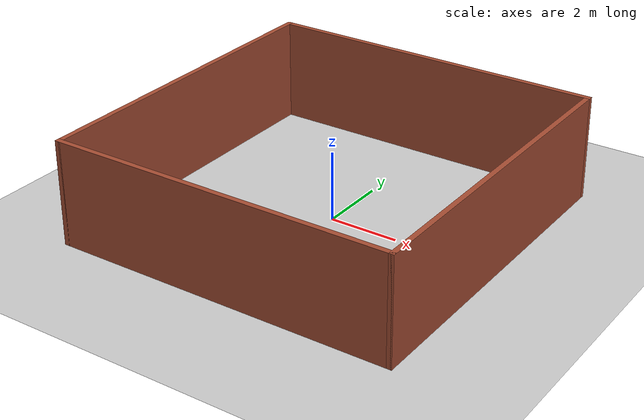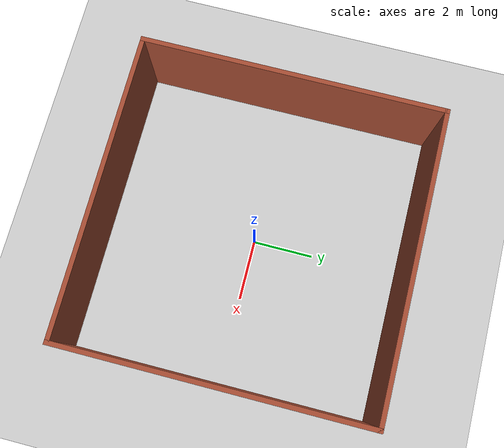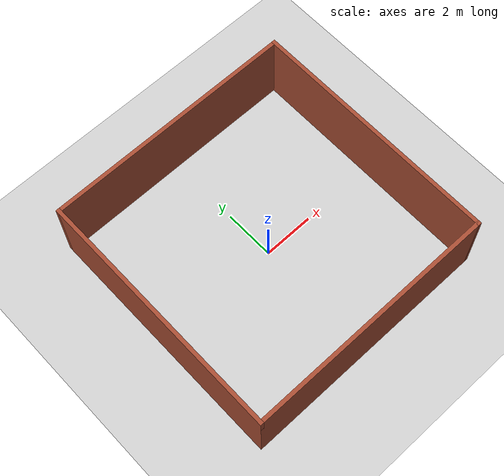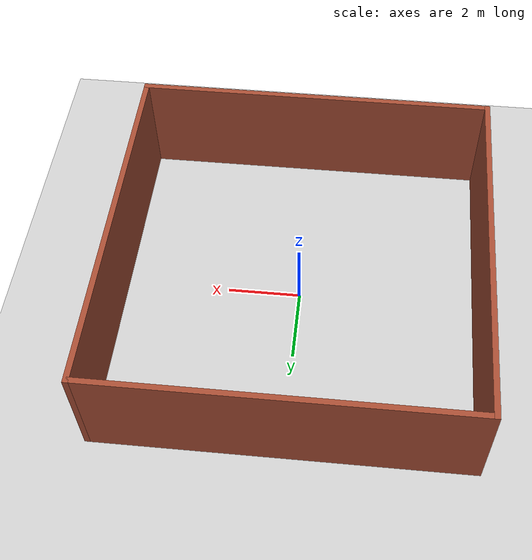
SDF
<sdf version="1.7">
 <world name="default">
  <light name="sun" type="directional">
   <cast_shadows>0</cast_shadows>
   <pose>0 0 10 0 -0 0</pose>
   <diffuse>0.8 0.8 0.8 1</diffuse>
   <specular>0.2 0.2 0.2 1</specular>
   <attenuation>
    <range>1000</range>
    <constant>0.9</constant>
    <linear>0.01</linear>
    <quadratic>0.001</quadratic>
   </attenuation>
   <direction>-0.5 0.1 -0.9</direction>
  </light>
  <model name="ground_plane">
   <static>1</static>
   <link name="link">
    <collision name="collision">
     <geometry><plane><normal>0 0 1</normal><size>100 100</size></plane></geometry>
     <surface><friction><ode><mu>100</mu><mu2>50</mu2></ode></friction></surface>
    </collision>
    <visual name="visual">
     <cast_shadows>0</cast_shadows>
     <geometry><plane><normal>0 0 1</normal><size>100 100</size></plane></geometry>
     <material>
      <script><uri>file://media/materials/scripts/gazebo.material</uri><name>Gazebo/Grey</name></script>
     </material>
    </visual>
    <velocity_decay><linear>0</linear><angular>0</angular></velocity_decay>
   </link>
  </model>
  <physics type="ode">
   <max_step_size>0.001</max_step_size>
   <real_time_factor>1</real_time_factor>
   <real_time_update_rate>1000</real_time_update_rate>
   <gravity>0 0 -9.8</gravity>
  </physics>
  <scene><ambient>0.4 0.4 0.4 1</ambient><background>0.7 0.7 0.7 1</background><shadows>1</shadows></scene>
  <spherical_coordinates>
   <surface_model>EARTH_WGS84</surface_model>
   <latitude_deg>0</latitude_deg>
   <longitude_deg>0</longitude_deg>
   <elevation>0</elevation>
   <heading_deg>0</heading_deg>
  </spherical_coordinates>
  <model name="walls">
   <link name="Wall_2">
    <collision name="Wall_2_Collision">
     <geometry><box><size>10 0.15 3</size></box></geometry>
     <pose>0 0 1.5 0 -0 0</pose>
    </collision>
    <visual name="Wall_2_Visual">
     <pose>0 0 1.5 0 -0 0</pose>
     <geometry><box><size>10 0.15 3</size></box></geometry>
     <material>
      <script><uri>file://media/materials/scripts/gazebo.material</uri><name>Gazebo/Bricks</name></script>
      <ambient>1 1 1 1</ambient>
     </material>
     <meta><layer>0</layer></meta>
    </visual>
    <pose>-4.925 0 0 0 -0 -1.5708</pose>
   </link>
   <link name="Wall_3">
    <collision name="Wall_3_Collision">
     <geometry><box><size>10 0.15 3</size></box></geometry>
     <pose>0 0 1.5 0 -0 0</pose>
    </collision>
    <visual name="Wall_3_Visual">
     <pose>0 0 1.5 0 -0 0</pose>
     <geometry><box><size>10 0.15 3</size></box></geometry>
     <material>
      <script><uri>file://media/materials/scripts/gazebo.material</uri><name>Gazebo/Bricks</name></script>
      <ambient>1 1 1 1</ambient>
     </material>
     <meta><layer>0</layer></meta>
    </visual>
    <pose>0 -4.925 0 0 -0 0</pose>
   </link>
   <link name="Wall_4">
    <collision name="Wall_4_Collision">
     <geometry><box><size>10 0.15 3</size></box></geometry>
     <pose>0 0 1.5 0 -0 0</pose>
    </collision>
    <visual name="Wall_4_Visual">
     <pose>0 0 1.5 0 -0 0</pose>
     <geometry><box><size>10 0.15 3</size></box></geometry>
     <material>
      <script><uri>file://media/materials/scripts/gazebo.material</uri><name>Gazebo/Bricks</name></script>
      <ambient>1 1 1 1</ambient>
     </material>
     <meta><layer>0</layer></meta>
    </visual>
    <pose>4.925 0 0 0 -0 1.5708</pose>
   </link>
   <link name="Wall_5">
    <collision name="Wall_5_Collision">
     <geometry><box><size>10 0.15 3</size></box></geometry>
     <pose>0 0 1.5 0 -0 0</pose>
    </collision>
    <visual name="Wall_5_Visual">
     <pose>0 0 1.5 0 -0 0</pose>
     <geometry><box><size>10 0.15 3</size></box></geometry>
     <material>
      <script><uri>file://media/materials/scripts/gazebo.material</uri><name>Gazebo/Bricks</name></script>
      <ambient>1 1 1 1</ambient>
     </material>
     <meta><layer>0</layer></meta>
    </visual>
    <pose>0 4.925 0 0 -0 3.14159</pose>
   </link>
   <static>1</static>
  </model>
  <light name="user_point_light_0" type="point">
   <pose>-1.53304 1 1 0 -0 0</pose>
   <diffuse>0.5 0.5 0.5 1</diffuse>
   <specular>0.1 0.1 0.1 1</specular>
   <attenuation>
    <range>20</range>
    <constant>0.5</constant>
    <linear>0.01</linear>
    <quadratic>0.001</quadratic>
   </attenuation>
   <cast_shadows>0</cast_shadows>
   <direction>0 0 -1</direction>
   <spot><inner_angle>0</inner_angle><outer_angle>0</outer_angle><falloff>0</falloff></spot>
  </light>
  <light name="user_point_light_1" type="point">
   <pose>1.53304 1 1 0 -0 0</pose>
   <diffuse>0.5 0.5 0.5 1</diffuse>
   <specular>0.1 0.1 0.1 1</specular>
   <attenuation>
    <range>20</range>
    <constant>0.5</constant>
    <linear>0.01</linear>
    <quadratic>0.001</quadratic>
   </attenuation>
   <cast_shadows>0</cast_shadows>
   <direction>0 0 -1</direction>
   <spot><inner_angle>0</inner_angle><outer_angle>0</outer_angle><falloff>0</falloff></spot>
  </light>
  <light name="user_point_light_2" type="point">
   <pose>0 -1 1 0 -0 0</pose>
   <diffuse>0.5 0.5 0.5 1</diffuse>
   <specular>0.1 0.1 0.1 1</specular>
   <attenuation>
    <range>20</range>
    <constant>0.5</constant>
    <linear>0.01</linear>
    <quadratic>0.001</quadratic>
   </attenuation>
   <cast_shadows>0</cast_shadows>
   <direction>0 0 -1</direction>
   <spot><inner_angle>0</inner_angle><outer_angle>0</outer_angle><falloff>0</falloff></spot>
  </light>
 </world>
</sdf>
